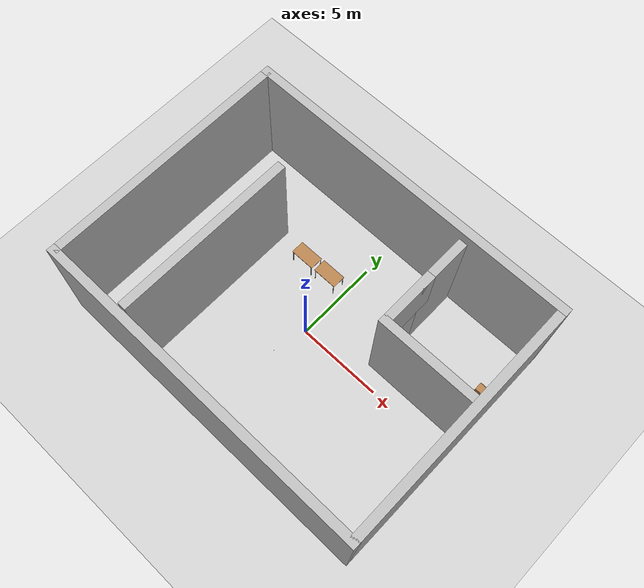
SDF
<sdf version="1.7">
 <world name="default">
  <model name="ground_plane">
   <static>1</static>
   <link name="link">
    <collision name="collision">
     <geometry><plane><normal>0 0 1</normal><size>20 15</size></plane></geometry>
     <surface>
      <contact><collide_bitmask>65535</collide_bitmask></contact>
      <friction><ode><mu>100</mu><mu2>50</mu2></ode></friction>
     </surface>
    </collision>
    <visual name="visual">
     <cast_shadows>0</cast_shadows>
     <geometry><plane><normal>0 0 1</normal><size>20 15</size></plane></geometry>
     <material>
      <script>
       <uri>model://TheFlyingAda/materials/scripts</uri>
       <uri>model://TheFlyingAda/materials/textures</uri>
       <name>Wooden/Floor</name>
      </script>
     </material>
    </visual>
   </link>
  </model>
  <model name="walls">
   <pose>0.000107 4e-06 -0 0 -1e-06 1.5e-05</pose>
   <link name="wall_1">
    <pose>0 7.25 3.5 0 -0 0</pose>
    <collision name="collision">
     <geometry><box><size>20 0.5 7</size></box></geometry>
     <surface>
      <contact><collide_bitmask>65535</collide_bitmask></contact>
      <friction><ode><mu>100</mu><mu2>50</mu2></ode></friction>
     </surface>
    </collision>
    <visual name="visual">
     <geometry><box><size>20 0.5 7</size></box></geometry>
     <material>
      <script>
       <uri>model://TheFlyingAda/materials/scripts</uri>
       <uri>model://TheFlyingAda/materials/textures</uri>
       <name>Plaster/Wall</name>
      </script>
     </material>
    </visual>
    <inertial>
     <inertia><ixx>1</ixx><ixy>0</ixy><ixz>0</ixz><iyy>1</iyy><iyz>0</iyz><izz>1</izz></inertia>
     <mass>1</mass>
    </inertial>
   </link>
   <link name="wall_2">
    <pose>9.75 0 3.5 0 -0 0</pose>
    <collision name="collision">
     <geometry><box><size>0.5 14.5 7</size></box></geometry>
     <surface>
      <contact><collide_bitmask>65535</collide_bitmask></contact>
      <friction><ode><mu>100</mu><mu2>50</mu2></ode></friction>
     </surface>
    </collision>
    <visual name="visual">
     <geometry><box><size>0.5 14.5 7</size></box></geometry>
     <material>
      <script>
       <uri>model://TheFlyingAda/materials/scripts</uri>
       <uri>model://TheFlyingAda/materials/textures</uri>
       <name>Plaster/Wall</name>
      </script>
     </material>
    </visual>
    <inertial>
     <inertia><ixx>1</ixx><ixy>0</ixy><ixz>0</ixz><iyy>1</iyy><iyz>0</iyz><izz>1</izz></inertia>
     <mass>1</mass>
    </inertial>
   </link>
   <link name="wall_3">
    <pose>0 -7.25 3.5 0 -0 0</pose>
    <collision name="collision">
     <geometry><box><size>20 0.5 7</size></box></geometry>
     <surface>
      <contact><collide_bitmask>65535</collide_bitmask></contact>
      <friction><ode><mu>100</mu><mu2>50</mu2></ode></friction>
     </surface>
    </collision>
    <visual name="visual">
     <geometry><box><size>20 0.5 7</size></box></geometry>
     <material>
      <script>
       <uri>model://TheFlyingAda/materials/scripts</uri>
       <uri>model://TheFlyingAda/materials/textures</uri>
       <name>Plaster/Wall</name>
      </script>
     </material>
    </visual>
    <inertial>
     <inertia><ixx>1</ixx><ixy>0</ixy><ixz>0</ixz><iyy>1</iyy><iyz>0</iyz><izz>1</izz></inertia>
     <mass>1</mass>
    </inertial>
   </link>
   <link name="wall_4">
    <pose>-9.75 0 3.5 0 -0 0</pose>
    <collision name="collision">
     <geometry><box><size>0.5 14.5 7</size></box></geometry>
     <surface>
      <contact><collide_bitmask>65535</collide_bitmask></contact>
      <friction><ode><mu>100</mu><mu2>50</mu2></ode></friction>
     </surface>
    </collision>
    <visual name="visual">
     <geometry><box><size>0.5 14.5 7</size></box></geometry>
     <material>
      <script>
       <uri>model://TheFlyingAda/materials/scripts</uri>
       <uri>model://TheFlyingAda/materials/textures</uri>
       <name>Plaster/Wall</name>
      </script>
     </material>
    </visual>
    <inertial>
     <inertia><ixx>1</ixx><ixy>0</ixy><ixz>0</ixz><iyy>1</iyy><iyz>0</iyz><izz>1</izz></inertia>
     <mass>1</mass>
    </inertial>
   </link>
   <link name="wall_5">
    <pose>-5 -1.75 4 0 -0 0</pose>
    <collision name="collision">
     <geometry><box><size>0.5 10.5 7</size></box></geometry>
     <surface>
      <contact><collide_bitmask>65535</collide_bitmask></contact>
      <friction><ode><mu>100</mu><mu2>50</mu2></ode></friction>
     </surface>
    </collision>
    <visual name="visual">
     <geometry><box><size>0.5 10.5 7</size></box></geometry>
     <material>
      <script>
       <uri>model://TheFlyingAda/materials/scripts</uri>
       <uri>model://TheFlyingAda/materials/textures</uri>
       <name>Plaster/Wall</name>
      </script>
     </material>
    </visual>
    <inertial>
     <inertia><ixx>1</ixx><ixy>0</ixy><ixz>0</ixz><iyy>1</iyy><iyz>0</iyz><izz>1</izz></inertia>
     <mass>1</mass>
    </inertial>
   </link>
  </model>
  <model name="corner_room">
   <static>true</static>
   <link name="wall_6">
    <pose>4 5.3 3 0 -0 0</pose>
    <collision name="collision">
     <geometry><box><size>0.5 3.25 7</size></box></geometry>
     <surface>
      <contact><collide_bitmask>65535</collide_bitmask></contact>
      <friction><ode><mu>100</mu><mu2>50</mu2></ode></friction>
     </surface>
    </collision>
    <visual name="visual">
     <geometry><box><size>0.5 3.25 7</size></box></geometry>
     <material>
      <script>
       <uri>model://TheFlyingAda/materials/scripts</uri>
       <uri>model://TheFlyingAda/materials/textures</uri>
       <name>PaintedWood/Wall</name>
      </script>
     </material>
    </visual>
    <inertial>
     <inertia><ixx>1</ixx><ixy>0</ixy><ixz>0</ixz><iyy>1</iyy><iyz>0</iyz><izz>1</izz></inertia>
     <mass>1</mass>
    </inertial>
   </link>
   <link name="wall_7">
    <pose>6.625 1.25 3 0 -0 0</pose>
    <collision name="collision">
     <geometry><box><size>5.75 0.5 7</size></box></geometry>
     <surface>
      <contact><collide_bitmask>65535</collide_bitmask></contact>
      <friction><ode><mu>100</mu><mu2>50</mu2></ode></friction>
     </surface>
    </collision>
    <visual name="visual">
     <geometry><box><size>5.75 0.5 7</size></box></geometry>
     <material>
      <script>
       <uri>model://TheFlyingAda/materials/scripts</uri>
       <uri>model://TheFlyingAda/materials/textures</uri>
       <name>PaintedWood/Wall</name>
      </script>
     </material>
    </visual>
    <inertial>
     <inertia><ixx>1</ixx><ixy>0</ixy><ixz>0</ixz><iyy>1</iyy><iyz>0</iyz><izz>1</izz></inertia>
     <mass>1</mass>
    </inertial>
   </link>
   <link name="wall_8">
    <pose>4 3 5 0 -0 0</pose>
    <collision name="collision">
     <geometry><box><size>0.5 3.125 3</size></box></geometry>
     <surface>
      <contact><collide_bitmask>65535</collide_bitmask></contact>
      <friction><ode><mu>100</mu><mu2>50</mu2></ode></friction>
     </surface>
    </collision>
    <visual name="visual">
     <geometry><box><size>0.5 3.125 3</size></box></geometry>
     <material>
      <script>
       <uri>model://TheFlyingAda/materials/scripts</uri>
       <uri>model://TheFlyingAda/materials/textures</uri>
       <name>PaintedWood/Wall</name>
      </script>
     </material>
    </visual>
    <kinematic>1</kinematic>
    <inertial>
     <inertia><ixx>1</ixx><ixy>0</ixy><ixz>0</ixz><iyy>1</iyy><iyz>0</iyz><izz>1</izz></inertia>
     <mass>1</mass>
    </inertial>
   </link>
   <joint name="joint_wall6_wall7" type="fixed"><parent>wall_6</parent><child>wall_7</child></joint>
   <joint name="joint_wall6_wall8" type="fixed"><parent>wall_6</parent><child>wall_8</child></joint>
   <joint name="joint_wall7_wall8" type="fixed"><parent>wall_7</parent><child>wall_8</child></joint>
  </model>
  <gravity>0 0 -9.8</gravity>
  <magnetic_field>6e-06 2.3e-05 -4.2e-05</magnetic_field>
  <atmosphere type="adiabatic"/>
  <physics type="ode">
   <max_step_size>0.001</max_step_size>
   <real_time_factor>1</real_time_factor>
   <real_time_update_rate>1000</real_time_update_rate>
  </physics>
  <scene><ambient>0.4 0.4 0.4 1</ambient><background>0.7 0.7 0.7 1</background><shadows>1</shadows></scene>
  <spherical_coordinates>
   <surface_model>EARTH_WGS84</surface_model>
   <latitude_deg>0</latitude_deg>
   <longitude_deg>0</longitude_deg>
   <elevation>0</elevation>
   <heading_deg>0</heading_deg>
  </spherical_coordinates>
  <model name="table">
   <static>1</static>
   <link name="link">
    <collision name="surface">
     <pose>0 0 1 0 -0 0</pose>
     <geometry><box><size>1.5 0.8 0.03</size></box></geometry>
     <surface><friction><ode><mu>0.6</mu><mu2>0.6</mu2></ode></friction></surface>
    </collision>
    <visual name="visual1">
     <pose>0 0 1 0 -0 0</pose>
     <geometry><box><size>1.5 0.8 0.03</size></box></geometry>
     <material>
      <script><uri>file://media/materials/scripts/gazebo.material</uri><name>Gazebo/Wood</name></script>
     </material>
    </visual>
    <collision name="front_left_leg">
     <pose>0.68 0.38 0.5 0 -0 0</pose>
     <geometry><cylinder><radius>0.02</radius><length>1</length></cylinder></geometry>
    </collision>
    <visual name="front_left_leg">
     <pose>0.68 0.38 0.5 0 -0 0</pose>
     <geometry><cylinder><radius>0.02</radius><length>1</length></cylinder></geometry>
     <material>
      <script><uri>file://media/materials/scripts/gazebo.material</uri><name>Gazebo/Grey</name></script>
     </material>
    </visual>
    <collision name="front_right_leg">
     <pose>0.68 -0.38 0.5 0 -0 0</pose>
     <geometry><cylinder><radius>0.02</radius><length>1</length></cylinder></geometry>
    </collision>
    <visual name="front_right_leg">
     <pose>0.68 -0.38 0.5 0 -0 0</pose>
     <geometry><cylinder><radius>0.02</radius><length>1</length></cylinder></geometry>
     <material>
      <script><uri>file://media/materials/scripts/gazebo.material</uri><name>Gazebo/Grey</name></script>
     </material>
    </visual>
    <collision name="back_right_leg">
     <pose>-0.68 -0.38 0.5 0 -0 0</pose>
     <geometry><cylinder><radius>0.02</radius><length>1</length></cylinder></geometry>
    </collision>
    <visual name="back_right_leg">
     <pose>-0.68 -0.38 0.5 0 -0 0</pose>
     <geometry><cylinder><radius>0.02</radius><length>1</length></cylinder></geometry>
     <material>
      <script><uri>file://media/materials/scripts/gazebo.material</uri><name>Gazebo/Grey</name></script>
     </material>
    </visual>
    <collision name="back_left_leg">
     <pose>-0.68 0.38 0.5 0 -0 0</pose>
     <geometry><cylinder><radius>0.02</radius><length>1</length></cylinder></geometry>
    </collision>
    <visual name="back_left_leg">
     <pose>-0.68 0.38 0.5 0 -0 0</pose>
     <geometry><cylinder><radius>0.02</radius><length>1</length></cylinder></geometry>
     <material>
      <script><uri>file://media/materials/scripts/gazebo.material</uri><name>Gazebo/Grey</name></script>
     </material>
    </visual>
   </link>
   <pose>-2.82183 3.05436 0 0 -0 0</pose>
  </model>
  <model name="table_0">
   <static>1</static>
   <link name="link">
    <collision name="surface">
     <pose>0 0 1 0 -0 0</pose>
     <geometry><box><size>1.5 0.8 0.03</size></box></geometry>
     <surface><friction><ode><mu>0.6</mu><mu2>0.6</mu2></ode></friction></surface>
    </collision>
    <visual name="visual1">
     <pose>0 0 1 0 -0 0</pose>
     <geometry><box><size>1.5 0.8 0.03</size></box></geometry>
     <material>
      <script><uri>file://media/materials/scripts/gazebo.material</uri><name>Gazebo/Wood</name></script>
     </material>
    </visual>
    <collision name="front_left_leg">
     <pose>0.68 0.38 0.5 0 -0 0</pose>
     <geometry><cylinder><radius>0.02</radius><length>1</length></cylinder></geometry>
    </collision>
    <visual name="front_left_leg">
     <pose>0.68 0.38 0.5 0 -0 0</pose>
     <geometry><cylinder><radius>0.02</radius><length>1</length></cylinder></geometry>
     <material>
      <script><uri>file://media/materials/scripts/gazebo.material</uri><name>Gazebo/Grey</name></script>
     </material>
    </visual>
    <collision name="front_right_leg">
     <pose>0.68 -0.38 0.5 0 -0 0</pose>
     <geometry><cylinder><radius>0.02</radius><length>1</length></cylinder></geometry>
    </collision>
    <visual name="front_right_leg">
     <pose>0.68 -0.38 0.5 0 -0 0</pose>
     <geometry><cylinder><radius>0.02</radius><length>1</length></cylinder></geometry>
     <material>
      <script><uri>file://media/materials/scripts/gazebo.material</uri><name>Gazebo/Grey</name></script>
     </material>
    </visual>
    <collision name="back_right_leg">
     <pose>-0.68 -0.38 0.5 0 -0 0</pose>
     <geometry><cylinder><radius>0.02</radius><length>1</length></cylinder></geometry>
    </collision>
    <visual name="back_right_leg">
     <pose>-0.68 -0.38 0.5 0 -0 0</pose>
     <geometry><cylinder><radius>0.02</radius><length>1</length></cylinder></geometry>
     <material>
      <script><uri>file://media/materials/scripts/gazebo.material</uri><name>Gazebo/Grey</name></script>
     </material>
    </visual>
    <collision name="back_left_leg">
     <pose>-0.68 0.38 0.5 0 -0 0</pose>
     <geometry><cylinder><radius>0.02</radius><length>1</length></cylinder></geometry>
    </collision>
    <visual name="back_left_leg">
     <pose>-0.68 0.38 0.5 0 -0 0</pose>
     <geometry><cylinder><radius>0.02</radius><length>1</length></cylinder></geometry>
     <material>
      <script><uri>file://media/materials/scripts/gazebo.material</uri><name>Gazebo/Grey</name></script>
     </material>
    </visual>
   </link>
   <pose>-1.16183 3.08618 0 0 -0 0</pose>
  </model>
  <model name="cabinet">
   <static>1</static>
   <link name="cabinet_bottom_plate">
    <inertial>
     <pose>0 0 -1 0 -0 0</pose>
     <inertia><ixx>2.05</ixx><ixy>0</ixy><ixz>0</ixz><iyy>2.05</iyy><iyz>0</iyz><izz>2.05</izz></inertia>
     <mass>25</mass>
    </inertial>
    <collision name="cabinet_bottom_plate_geom">
     <pose>0 0 0.01 0 -0 0</pose>
     <geometry><box><size>0.45 0.45 0.02</size></box></geometry>
    </collision>
    <visual name="cabinet_bottom_plate_geom_visual">
     <pose>0 0 0.01 0 -0 0</pose>
     <geometry><box><size>0.45 0.45 0.02</size></box></geometry>
     <material>
      <script><uri>file://media/materials/scripts/gazebo.material</uri><name>Gazebo/Wood</name></script>
     </material>
    </visual>
    <collision name="cabinet_bottom_plate_geom_cabinet_back_plate">
     <pose>0.235 0 0.51 0 -0 0</pose>
     <geometry><box><size>0.02 0.45 1.02</size></box></geometry>
    </collision>
    <visual name="cabinet_bottom_plate_geom_cabinet_back_plate_visual">
     <pose>0.235 0 0.51 0 -0 0</pose>
     <geometry><box><size>0.02 0.45 1.02</size></box></geometry>
     <material>
      <script><uri>file://media/materials/scripts/gazebo.material</uri><name>Gazebo/Wood</name></script>
     </material>
    </visual>
    <collision name="cabinet_bottom_plate_geom_cabinet_left_plate">
     <pose>0 0.235 0.51 0 -0 0</pose>
     <geometry><box><size>0.45 0.02 1.02</size></box></geometry>
    </collision>
    <visual name="cabinet_bottom_plate_geom_cabinet_left_plate_visual">
     <pose>0 0.235 0.51 0 -0 0</pose>
     <geometry><box><size>0.45 0.02 1.02</size></box></geometry>
     <material>
      <script><uri>file://media/materials/scripts/gazebo.material</uri><name>Gazebo/Wood</name></script>
     </material>
    </visual>
    <collision name="cabinet_bottom_plate_geom_cabinet_middle_plate">
     <pose>0 0 0.51 0 -0 0</pose>
     <geometry><box><size>0.45 0.45 0.02</size></box></geometry>
    </collision>
    <visual name="cabinet_bottom_plate_geom_cabinet_middle_plate_visual">
     <pose>0 0 0.51 0 -0 0</pose>
     <geometry><box><size>0.45 0.45 0.02</size></box></geometry>
     <material>
      <script><uri>file://media/materials/scripts/gazebo.material</uri><name>Gazebo/Wood</name></script>
     </material>
    </visual>
    <collision name="cabinet_bottom_plate_geom_cabinet_right_plate">
     <pose>0 -0.235 0.51 0 -0 0</pose>
     <geometry><box><size>0.45 0.02 1.02</size></box></geometry>
    </collision>
    <visual name="cabinet_bottom_plate_geom_cabinet_right_plate_visual">
     <pose>0 -0.235 0.51 0 -0 0</pose>
     <geometry><box><size>0.45 0.02 1.02</size></box></geometry>
     <material>
      <script><uri>file://media/materials/scripts/gazebo.material</uri><name>Gazebo/Wood</name></script>
     </material>
    </visual>
    <collision name="cabinet_bottom_plate_geom_cabinet_top_plate">
     <pose>0 0 1.01 0 -0 0</pose>
     <geometry><box><size>0.45 0.45 0.02</size></box></geometry>
    </collision>
    <visual name="cabinet_bottom_plate_geom_cabinet_top_plate_visual">
     <pose>0 0 1.01 0 -0 0</pose>
     <geometry><box><size>0.45 0.45 0.02</size></box></geometry>
     <material>
      <script><uri>file://media/materials/scripts/gazebo.material</uri><name>Gazebo/Wood</name></script>
     </material>
    </visual>
   </link>
   <pose>9.06593 3.79066 0 0 -0 0</pose>
  </model>
  <model name="cabinet_0">
   <static>1</static>
   <link name="cabinet_bottom_plate">
    <inertial>
     <pose>0 0 -1 0 -0 0</pose>
     <inertia><ixx>2.05</ixx><ixy>0</ixy><ixz>0</ixz><iyy>2.05</iyy><iyz>0</iyz><izz>2.05</izz></inertia>
     <mass>25</mass>
    </inertial>
    <collision name="cabinet_bottom_plate_geom">
     <pose>0 0 0.01 0 -0 0</pose>
     <geometry><box><size>0.45 0.45 0.02</size></box></geometry>
    </collision>
    <visual name="cabinet_bottom_plate_geom_visual">
     <pose>0 0 0.01 0 -0 0</pose>
     <geometry><box><size>0.45 0.45 0.02</size></box></geometry>
     <material>
      <script><uri>file://media/materials/scripts/gazebo.material</uri><name>Gazebo/Wood</name></script>
     </material>
    </visual>
    <collision name="cabinet_bottom_plate_geom_cabinet_back_plate">
     <pose>0.235 0 0.51 0 -0 0</pose>
     <geometry><box><size>0.02 0.45 1.02</size></box></geometry>
    </collision>
    <visual name="cabinet_bottom_plate_geom_cabinet_back_plate_visual">
     <pose>0.235 0 0.51 0 -0 0</pose>
     <geometry><box><size>0.02 0.45 1.02</size></box></geometry>
     <material>
      <script><uri>file://media/materials/scripts/gazebo.material</uri><name>Gazebo/Wood</name></script>
     </material>
    </visual>
    <collision name="cabinet_bottom_plate_geom_cabinet_left_plate">
     <pose>0 0.235 0.51 0 -0 0</pose>
     <geometry><box><size>0.45 0.02 1.02</size></box></geometry>
    </collision>
    <visual name="cabinet_bottom_plate_geom_cabinet_left_plate_visual">
     <pose>0 0.235 0.51 0 -0 0</pose>
     <geometry><box><size>0.45 0.02 1.02</size></box></geometry>
     <material>
      <script><uri>file://media/materials/scripts/gazebo.material</uri><name>Gazebo/Wood</name></script>
     </material>
    </visual>
    <collision name="cabinet_bottom_plate_geom_cabinet_middle_plate">
     <pose>0 0 0.51 0 -0 0</pose>
     <geometry><box><size>0.45 0.45 0.02</size></box></geometry>
    </collision>
    <visual name="cabinet_bottom_plate_geom_cabinet_middle_plate_visual">
     <pose>0 0 0.51 0 -0 0</pose>
     <geometry><box><size>0.45 0.45 0.02</size></box></geometry>
     <material>
      <script><uri>file://media/materials/scripts/gazebo.material</uri><name>Gazebo/Wood</name></script>
     </material>
    </visual>
    <collision name="cabinet_bottom_plate_geom_cabinet_right_plate">
     <pose>0 -0.235 0.51 0 -0 0</pose>
     <geometry><box><size>0.45 0.02 1.02</size></box></geometry>
    </collision>
    <visual name="cabinet_bottom_plate_geom_cabinet_right_plate_visual">
     <pose>0 -0.235 0.51 0 -0 0</pose>
     <geometry><box><size>0.45 0.02 1.02</size></box></geometry>
     <material>
      <script><uri>file://media/materials/scripts/gazebo.material</uri><name>Gazebo/Wood</name></script>
     </material>
    </visual>
    <collision name="cabinet_bottom_plate_geom_cabinet_top_plate">
     <pose>0 0 1.01 0 -0 0</pose>
     <geometry><box><size>0.45 0.45 0.02</size></box></geometry>
    </collision>
    <visual name="cabinet_bottom_plate_geom_cabinet_top_plate_visual">
     <pose>0 0 1.01 0 -0 0</pose>
     <geometry><box><size>0.45 0.45 0.02</size></box></geometry>
     <material>
      <script><uri>file://media/materials/scripts/gazebo.material</uri><name>Gazebo/Wood</name></script>
     </material>
    </visual>
   </link>
   <pose>9.07409 3.21136 0 0 -0 0</pose>
  </model>
  <model name="bookshelf">
   <static>1</static>
   <link name="link">
    <inertial><mass>1</mass></inertial>
    <collision name="back">
     <pose>0 0.005 0.6 0 -0 0</pose>
     <geometry><box><size>0.9 0.01 1.2</size></box></geometry>
    </collision>
    <visual name="visual1">
     <pose>0 0.005 0.6 0 -0 0</pose>
     <geometry><box><size>0.9 0.01 1.2</size></box></geometry>
     <material>
      <script><uri>file://media/materials/scripts/gazebo.material</uri><name>Gazebo/Wood</name></script>
     </material>
    </visual>
    <collision name="left_side">
     <pose>0.45 -0.195 0.6 0 -0 0</pose>
     <geometry><box><size>0.02 0.4 1.2</size></box></geometry>
    </collision>
    <visual name="visual2">
     <pose>0.45 -0.195 0.6 0 -0 0</pose>
     <geometry><box><size>0.02 0.4 1.2</size></box></geometry>
     <material>
      <script><uri>file://media/materials/scripts/gazebo.material</uri><name>Gazebo/Wood</name></script>
     </material>
    </visual>
    <collision name="right_side">
     <pose>-0.45 -0.195 0.6 0 -0 0</pose>
     <geometry><box><size>0.02 0.4 1.2</size></box></geometry>
    </collision>
    <visual name="visual3">
     <pose>-0.45 -0.195 0.6 0 -0 0</pose>
     <geometry><box><size>0.02 0.4 1.2</size></box></geometry>
     <material>
      <script><uri>file://media/materials/scripts/gazebo.material</uri><name>Gazebo/Wood</name></script>
     </material>
    </visual>
    <collision name="bottom">
     <pose>0 -0.195 0.03 0 -0 0</pose>
     <geometry><box><size>0.88 0.4 0.06</size></box></geometry>
    </collision>
    <visual name="visual4">
     <pose>0 -0.195 0.03 0 -0 0</pose>
     <geometry><box><size>0.88 0.4 0.06</size></box></geometry>
     <material>
      <script><uri>file://media/materials/scripts/gazebo.material</uri><name>Gazebo/Wood</name></script>
     </material>
    </visual>
    <collision name="top">
     <pose>0 -0.195 1.19 0 -0 0</pose>
     <geometry><box><size>0.88 0.4 0.02</size></box></geometry>
    </collision>
    <visual name="visual5">
     <pose>0 -0.195 1.19 0 -0 0</pose>
     <geometry><box><size>0.88 0.4 0.02</size></box></geometry>
     <material>
      <script><uri>file://media/materials/scripts/gazebo.material</uri><name>Gazebo/Wood</name></script>
     </material>
    </visual>
    <collision name="low_shelf">
     <pose>0 -0.195 0.43 0 -0 0</pose>
     <geometry><box><size>0.88 0.4 0.02</size></box></geometry>
    </collision>
    <visual name="visual6">
     <pose>0 -0.195 0.43 0 -0 0</pose>
     <geometry><box><size>0.88 0.4 0.02</size></box></geometry>
     <material>
      <script><uri>file://media/materials/scripts/gazebo.material</uri><name>Gazebo/Wood</name></script>
     </material>
    </visual>
    <collision name="high_shelf">
     <pose>0 -0.195 0.8 0 -0 0</pose>
     <geometry><box><size>0.88 0.4 0.02</size></box></geometry>
    </collision>
    <visual name="visual7">
     <pose>0 -0.195 0.8 0 -0 0</pose>
     <geometry><box><size>0.88 0.4 0.02</size></box></geometry>
     <material>
      <script><uri>file://media/materials/scripts/gazebo.material</uri><name>Gazebo/Wood</name></script>
     </material>
    </visual>
   </link>
   <pose>3.23434 6.96239 0 0 -0 0</pose>
  </model>
  <model name="metal_peg">
   <link name="link">
    <pose>0 0 0.031 0 -0 0</pose>
    <inertial>
     <mass>0.0121</mass>
     <inertia>
      <ixx>3.90898e-06</ixx>
      <ixy>0</ixy>
      <ixz>0</ixz>
      <iyy>3.90898e-06</iyy>
      <iyz>0</iyz>
      <izz>6.58845e-08</izz>
     </inertia>
    </inertial>
    <collision name="collision">
     <geometry><cylinder><radius>0.0033</radius><length>0.062</length></cylinder></geometry>
     <surface>
      <contact>
       <poissons_ratio>0.305</poissons_ratio>
       <elastic_modulus>2e+11</elastic_modulus>
       <ode><kp>100000</kp><kd>100</kd><max_vel>100</max_vel><min_depth>0.001</min_depth></ode>
      </contact>
      <friction>
       <torsional>
        <coefficient>1</coefficient>
        <use_patch_radius>0</use_patch_radius>
        <surface_radius>0.01</surface_radius>
       </torsional>
      </friction>
     </surface>
    </collision>
    <visual name="visual">
     <geometry><cylinder><radius>0.0033</radius><length>0.062</length></cylinder></geometry>
     <material>
      <script><uri>file://media/materials/scripts/gazebo.material</uri><name>Gazebo/Grey</name></script>
     </material>
    </visual>
   </link>
   <pose>-0.472063 -1.9863 -0.001 -5e-06 5e-06 -1e-06</pose>
  </model>
 </world>
</sdf>
